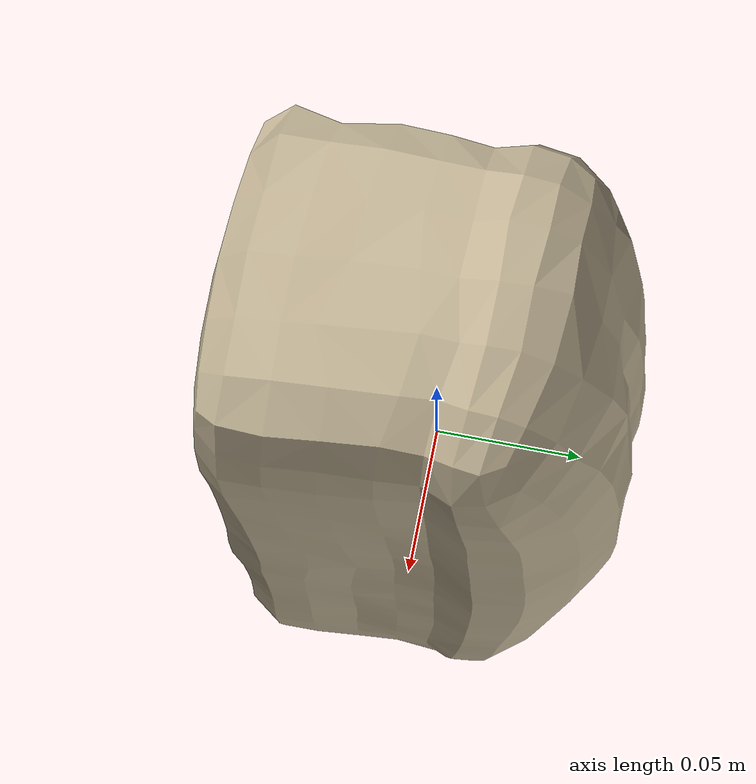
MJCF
<mujoco model="Bread_3">
  <compiler autolimits="true" boundmass="0.01" angle="radian"/>
  <default>
    <default class="/">
      <default class="__VISUAL_MJT__">
        <geom contype="0" conaffinity="0" group="0"/>
      </default>
      <default class="__STRUCTURAL_MJT__">
        <geom contype="8" conaffinity="15" group="4" friction="0.90000000000000002 0.90000000000000002 0.001" solref="0.025000000000000001 1" solimp="0.998 0.998 0.001"/>
      </default>
      <default class="__DYNAMIC_MJT__">
        <geom contype="1" conaffinity="15" group="4" friction="0.90000000000000002 0.90000000000000002 0.001" solref="0.025000000000000001 1" solimp="0.998 0.998 0.001"/>
      </default>
    </default>
  </default>
  <asset>
    <texture name="Bread1_Mat3" type="2d" file="Bread1_AlbedoTransparency.png"/>
    <material name="material_Bread1_Mat3" class="/" texture="Bread1_Mat3" specular="0.5" shininess="0.5" rgba="1 0.96551719999999996 0.85294119999999995 1"/>
    <mesh name="Bread_3_bread1_c_mesh" class="/" file="Bread_3_bread1_c_mesh/Bread_3_bread1_c_mesh.obj" scale="1 1 1"/>
  </asset>
  <worldbody>
    <body name="Bread_3">
      <joint name="Bread_3_free" class="/" type="free" pos="0 0 0" axis="0 0 1" stiffness="0" range="0 0" armature="0" damping="0.10000000000000001" frictionloss="0"/>
      <body name="Bread_3_bread1_c_mesh" pos="-0 0.0047999999999999996 0.00020000000000000001" quat="1 0 0 0">
        <geom name="Bread_3_bread1_c_mesh" class="__VISUAL_MJT__" type="mesh" material="material_Bread1_Mat3" shellinertia="false" mesh="Bread_3_bread1_c_mesh"/>
        <geom name="Bread_3_PrimitiveCollider_0" class="__DYNAMIC_MJT__" type="box" size="0.059852510690689087 0.065715670585632324 0.15615236759185791" rgba="0 1 0 1" pos="-0 -0.0048009157180786133 -0.0002009272575378418" quat="1 0 0 0"/>
      </body>
    </body>
  </worldbody>
</mujoco>
